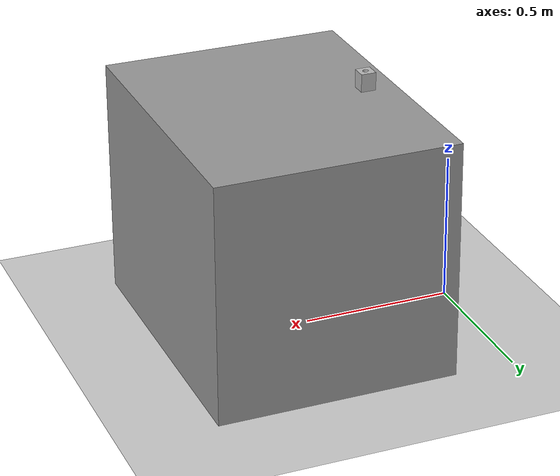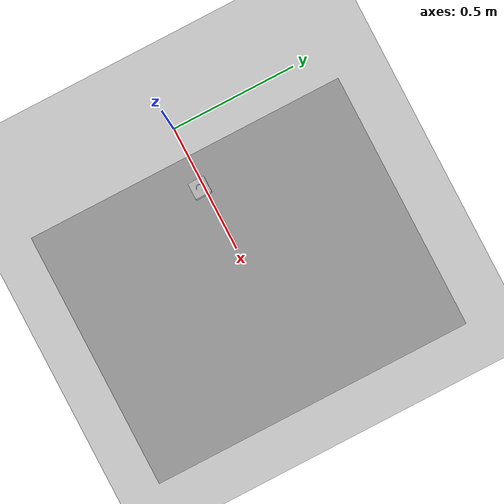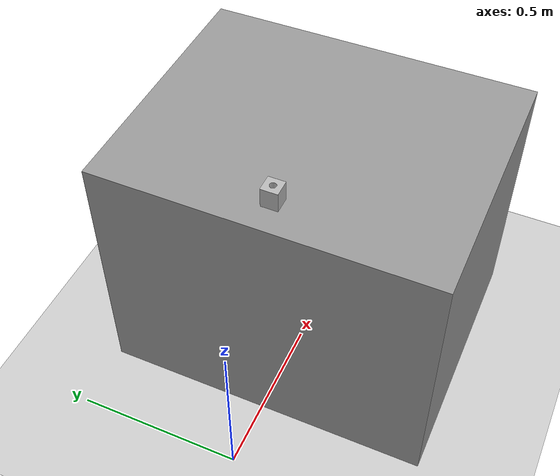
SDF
<?xml version="1.0" ?>
<sdf version="1.4">
  <!-- We use a custom world for the rrbot so that the camera angle is launched correctly -->

  <world name="default">
    <include>
      <uri>model://ground_plane</uri>
    </include>

    <!-- Global light source -->
    <include>
      <uri>model://sun</uri>
    </include>

    <physics type='ode'>
      <max_step_size>0.001</max_step_size>
      <real_time_factor>0.1</real_time_factor>
      <real_time_update_rate>1000</real_time_update_rate>
      <gravity>0 0 -9.8</gravity>
      <ode>
        <solver>
          <type>quick</type>
          <iters>50</iters>
          <sor>1.0</sor> <!-- Important, see issue #2209 -->
          <use_dynamic_moi_rescaling>false</use_dynamic_moi_rescaling>
        </solver>
      </ode>
    </physics>

    <model name="table">
      <link name="table_link">
        <inertial>
          <mass>50</mass>
          <inertia>
            <ixx>0.166667</ixx>
            <ixy>0</ixy>
            <ixz>0</ixz>
            <iyy>0.166667</iyy>
            <iyz>0</iyz>
            <izz>0.166667</izz>
          </inertia>
          <pose frame="">0 0 0 0 -0 0</pose>
        </inertial>
        <self_collide>0</self_collide>
        <enable_wind>0</enable_wind>
        <kinematic>0</kinematic>
        <pose frame=''>0 0 0 0 -0 0</pose>
        <gravity>1</gravity>
        <visual name="table_visual">
          <geometry>
            <box>
              <size>0.8 1 0.8</size>
            </box>
          </geometry>
          <material>
            <script>
              <name>Gazebo/Gray</name>
              <uri>file://media/materials/scripts/gazebo.material</uri>
            </script>
          </material>
          <pose frame="">0 0 0 0 -0 0</pose>
          <transparency>0</transparency>
          <cast_shadows>1</cast_shadows>
        </visual>
        <collision name="table_collision">
          <laser_retro>0</laser_retro>
          <max_contacts>10</max_contacts>
          <pose frame="">0 0 0 0 -0 0</pose>
          <geometry>
            <box>
              <size>0.8 1 0.8</size>
            </box>
          </geometry>
          <surface>
            <friction>
              <ode>
                <mu>1</mu>
                <mu2>1</mu2>
                <fdir1>0 0 0</fdir1>
                <slip1>0</slip1>
                <slip2>0</slip2>
              </ode>
              <torsional>
                <coefficient>1</coefficient>
                <patch_radius>0</patch_radius>
                <surface_radius>0</surface_radius>
                <use_patch_radius>1</use_patch_radius>
                <ode>
                  <slip>0</slip>
                </ode>
              </torsional>
            </friction>
            <bounce>
              <restitution_coefficient>0</restitution_coefficient>
              <threshold>1e+06</threshold>
            </bounce>
            <contact>
              <collide_without_contact>0</collide_without_contact>
              <collide_without_contact_bitmask>1</collide_without_contact_bitmask>
              <collide_bitmask>1</collide_bitmask>
              <ode>
                <soft_cfm>0</soft_cfm>
                <soft_erp>0.2</soft_erp>
                <kp>1e+13</kp>
                <kd>1</kd>
                <max_vel>0.01</max_vel>
                <min_depth>0</min_depth>
              </ode>
              <bullet>
                <split_impulse>1</split_impulse>
                <split_impulse_penetration_threshold>-0.01</split_impulse_penetration_threshold>
                <soft_cfm>0</soft_cfm>
                <soft_erp>0.2</soft_erp>
                <kp>1</kp>
                <kd>1</kd>
              </bullet>
            </contact>
          </surface>
        </collision>
      </link>
      <static>1</static>
      <allow_auto_disable>1</allow_auto_disable>
      <pose frame="">0.6 0 0.4 0 0 0</pose>
    </model>

      <include>
        <pose>0.3 0 0.8 1.57 0 0</pose>
        <uri>model://mobile_dual_arm/urdf/hole</uri>
        <name>hole_1</name>
        <static>true</static>
      </include>

    <!-- Focus camera on tall pendulum -->
    <gui fullscreen='0'>
      <camera name='user_camera'>
        <pose>4.927360 -4.376610 3.740080 0.000000 0.275643 2.356190</pose>
        <view_controller>orbit</view_controller>
      </camera>
    </gui>

  </world>
</sdf>

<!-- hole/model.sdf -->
<sdf version="1.4">
   <model name="hole_model">
      <static>false</static>
      <link name="hole_link">
         <pose>0 0 0 0 0 0</pose>
         <inertial>
            <mass>1</mass>
            <pose>0 0 0 0 0 0</pose>
            <inertia>
               <ixx>10</ixx>
               <ixy>0</ixy>
               <ixz>0</ixz>
               <iyy>10</iyy>
               <iyz>0</iyz>
               <izz>10</izz>
            </inertia>
         </inertial>
         <collision name="hole_collision">
            <pose>0 0 0 0 0 0</pose>
            <geometry>
               <mesh>
                  <uri>model://mobile_dual_arm/scene/meshes/hole.SLDPRT.stl</uri>
               </mesh>
            </geometry>
            <surface>
               <bounce>
                  <restitution_coefficient>0</restitution_coefficient>
               </bounce>
               <friction>
                  <ode>
                     <mu>0.1</mu>
                     <mu2>0.1</mu2>
                  </ode>
               </friction>
            </surface>
         </collision>
         <visual name="hole_visual">
            <pose>0 0 0 0 0 0</pose>
            <geometry>
               <mesh>
                  <uri>model://mobile_dual_arm/scene/meshes/hole.SLDPRT.stl</uri>
               </mesh>
            </geometry>
         </visual>
         <velocity_decay>
            <linear>0</linear>
            <angular>0</angular>
         </velocity_decay>
         <self_collide>0</self_collide>
         <gravity>1</gravity>
      </link>
   </model>
</sdf>
